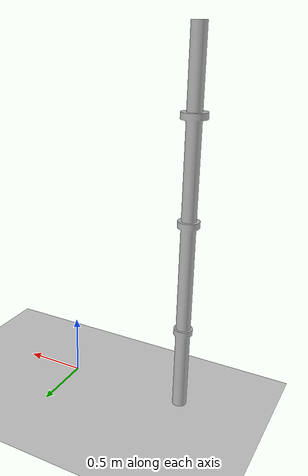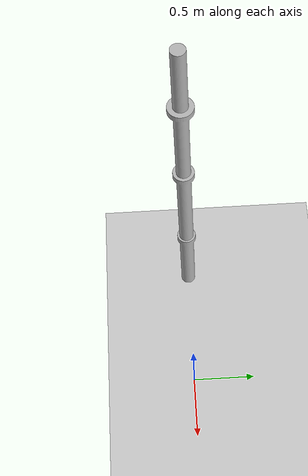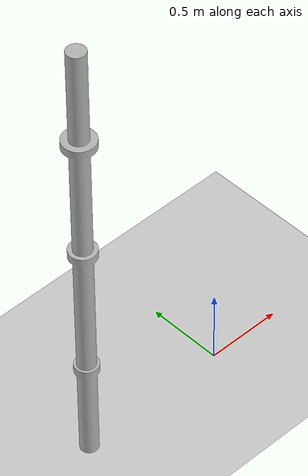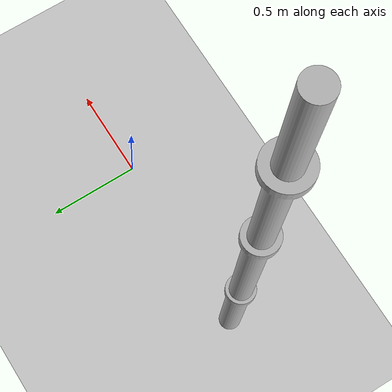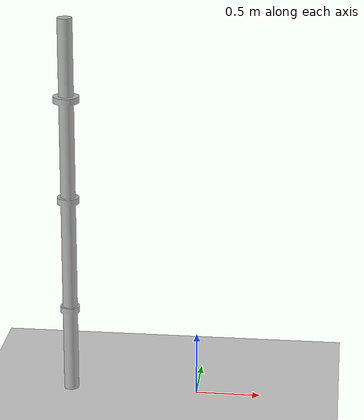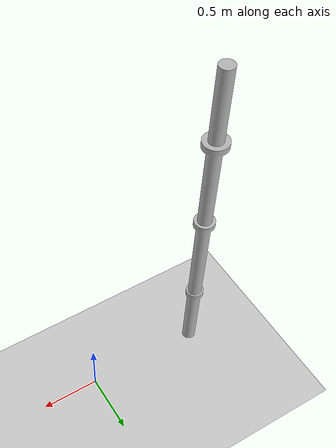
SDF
<?xml version="1.0" ?>
<sdf version="1.4">
  <!-- We use a custom world for the snake so that the camera angle is launched correctly -->

  <world name="default">
    <include>
      <uri>model://ground_plane</uri>
    </include>

    <!-- Global light source -->
    <include>
      <uri>model://sun</uri>
    </include>

    <model name="my_mesh">
      <pose>0 0 0  0 0 0</pose>
      <static>true</static>
      <link name="body">
        <visual name="visual">
          <geometry>
            <mesh><uri>model://flangs/flangs.stl</uri></mesh>
          </geometry>
        </visual>
        <collision name="collision2">
          <geometry>
            <mesh><uri>model://flangs/flangs.stl</uri></mesh>
          </geometry>
        </collision>
      </link>
    </model>

    <physics type="ode">
      <gravity>0 0 -9.81</gravity>
      <max_step_size>0.002</max_step_size>
      <real_time_factor>1</real_time_factor>
      <real_time_update_rate>1000</real_time_update_rate>
      <ode>
        <solver>
          <type>quick</type>
          <iters>50</iters>
          <sor>1.4</sor>
        </solver>
        <constraints>
          <cfm>0.00001</cfm>
          <erp>0.8</erp>
          <contact_max_correcting_vel>0</contact_max_correcting_vel>
          <contact_surface_layer>0</contact_surface_layer>
        </constraints>
       </ode>
     </physics>

    <!-- Focus camera on tall pendulum -->
    <gui fullscreen='0'>
      <camera name='user_camera'>
        <pose>2.927360 -2.376610 1.740080 0.000000 0.275643 2.356190</pose>
        <view_controller>orbit</view_controller>
      </camera>
    </gui>
  </world>
</sdf>
